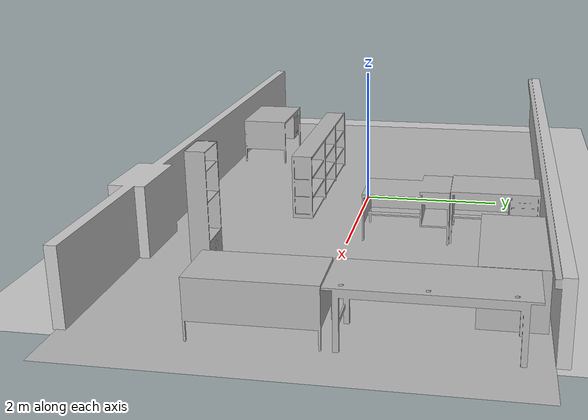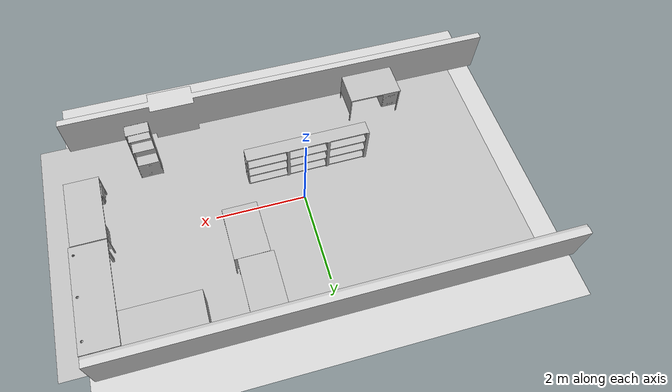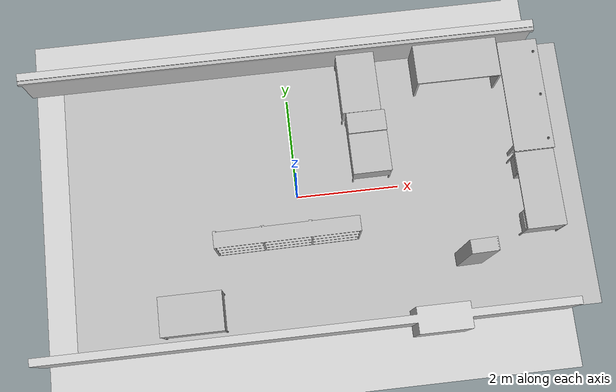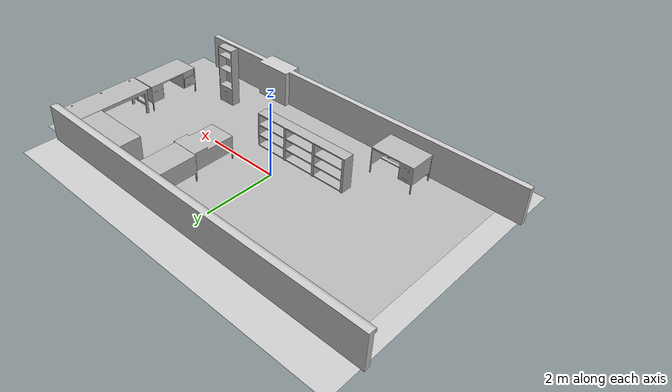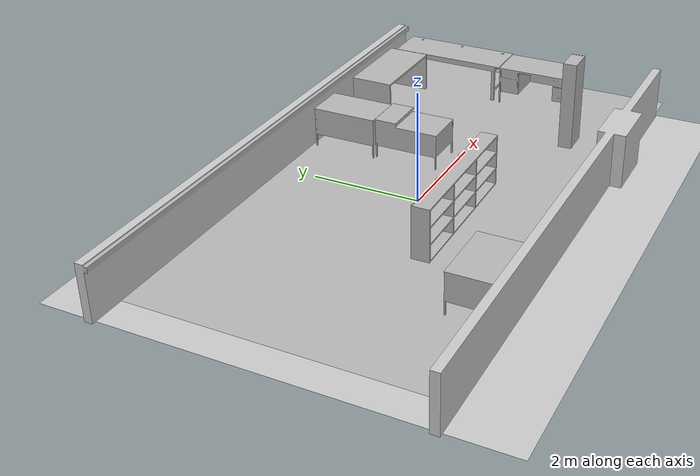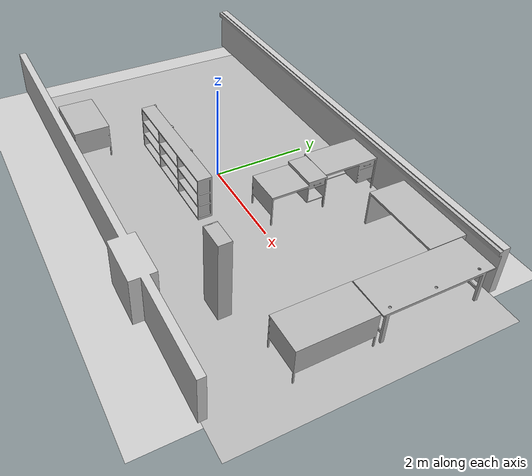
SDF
<sdf version="1.7">
 <world name="default">
  <gravity>0 0 -9.8</gravity>
  <magnetic_field>6e-06 2.3e-05 -4.2e-05</magnetic_field>
  <atmosphere type="adiabatic"/>
  <physics type="ode">
   <max_step_size>0.001</max_step_size>
   <real_time_factor>1</real_time_factor>
   <real_time_update_rate>1000</real_time_update_rate>
  </physics>
  <scene><ambient>0.4 0.4 0.4 1</ambient><background>0.7 0.7 0.7 1</background><shadows>1</shadows></scene>
  <spherical_coordinates>
   <surface_model>EARTH_WGS84</surface_model>
   <latitude_deg>0</latitude_deg>
   <longitude_deg>0</longitude_deg>
   <elevation>0</elevation>
   <heading_deg>0</heading_deg>
  </spherical_coordinates>
  <model name="gplane">
   <link name="body">
    <collision name="gplane_coll">
     <geometry><plane><normal>0 0 1</normal><size>10.075 13.18</size></plane></geometry>
     <surface><contact><ode><kp>1e+06</kp><kd>1</kd></ode></contact></surface>
     <laser_retro>2000</laser_retro>
    </collision>
    <visual name="gplane_vis">
     <geometry><plane><normal>0 0 1</normal><size>10.075 13.18</size></plane></geometry>
     <material>
      <script>
       <uri>model://base_materials/carpet/scripts</uri>
       <uri>model://base_materials/carpet/textures</uri>
       <name>carpet/carpet01</name>
      </script>
     </material>
     <cast_shadows>0</cast_shadows>
    </visual>
    <velocity_decay><linear>0</linear><angular>0</angular></velocity_decay>
   </link>
   <static>1</static>
  </model>
  <model name="Table_01">
   <link name="link_0">
    <inertial>
     <mass>14</mass>
     <inertia>
      <ixx>0.166667</ixx>
      <ixy>0</ixy>
      <ixz>0</ixz>
      <iyy>0.166667</iyy>
      <iyz>0</iyz>
      <izz>0.166667</izz>
     </inertia>
    </inertial>
    <visual name="visual">
     <geometry><mesh><uri>model://BioRoboticsLab/meshes/Table_01.dae</uri><scale>1 1 1</scale></mesh></geometry>
     <material><lighting>1</lighting><shader type="pixel"/></material>
    </visual>
    <collision name="collision">
     <geometry><mesh><uri>model://BioRoboticsLab/meshes/Table_01.dae</uri><scale>1 1 1</scale></mesh></geometry>
     <surface>
      <friction>
       <ode><mu>1</mu><mu2>1</mu2><fdir1>0 0 0</fdir1><slip1>0</slip1><slip2>0</slip2></ode>
       <torsional>
        <coefficient>1</coefficient>
        <patch_radius>0</patch_radius>
        <surface_radius>0</surface_radius>
        <use_patch_radius>1</use_patch_radius>
        <ode><slip>0</slip></ode>
       </torsional>
      </friction>
      <bounce><restitution_coefficient>0</restitution_coefficient><threshold>1e+06</threshold></bounce>
      <contact>
       <collide_without_contact>0</collide_without_contact>
       <collide_without_contact_bitmask>1</collide_without_contact_bitmask>
       <collide_bitmask>1</collide_bitmask>
       <ode>
        <soft_cfm>0</soft_cfm>
        <soft_erp>0.2</soft_erp>
        <kp>1e+13</kp>
        <kd>1</kd>
        <max_vel>0.01</max_vel>
        <min_depth>0</min_depth>
       </ode>
       <bullet>
        <split_impulse>1</split_impulse>
        <split_impulse_penetration_threshold>-0.01</split_impulse_penetration_threshold>
        <soft_cfm>0</soft_cfm>
        <soft_erp>0.2</soft_erp>
        <kp>1e+13</kp>
        <kd>1</kd>
       </bullet>
      </contact>
     </surface>
    </collision>
   </link>
   <static>1</static>
   <pose>4.62119 1.38763 0 0 -0 1.57</pose>
  </model>
  <model name="Table_02">
   <link name="link_0">
    <inertial>
     <mass>15</mass>
     <inertia>
      <ixx>0.166667</ixx>
      <ixy>0</ixy>
      <ixz>0</ixz>
      <iyy>0.166667</iyy>
      <iyz>0</iyz>
      <izz>0.166667</izz>
     </inertia>
    </inertial>
    <visual name="visual">
     <geometry><mesh><uri>model://BioRoboticsLab/meshes/Table_02.dae</uri><scale>1 1 1</scale></mesh></geometry>
     <material><lighting>1</lighting><shader type="pixel"/></material>
    </visual>
    <collision name="collision">
     <geometry><mesh><uri>model://BioRoboticsLab/meshes/Table_02.dae</uri><scale>1 1 1</scale></mesh></geometry>
     <surface>
      <friction>
       <ode><mu>1</mu><mu2>1</mu2><fdir1>0 0 0</fdir1><slip1>0</slip1><slip2>0</slip2></ode>
       <torsional>
        <coefficient>1</coefficient>
        <patch_radius>0</patch_radius>
        <surface_radius>0</surface_radius>
        <use_patch_radius>1</use_patch_radius>
        <ode><slip>0</slip></ode>
       </torsional>
      </friction>
      <bounce><restitution_coefficient>0</restitution_coefficient><threshold>1e+06</threshold></bounce>
      <contact>
       <collide_without_contact>0</collide_without_contact>
       <collide_without_contact_bitmask>1</collide_without_contact_bitmask>
       <collide_bitmask>1</collide_bitmask>
       <ode>
        <soft_cfm>0</soft_cfm>
        <soft_erp>0.2</soft_erp>
        <kp>1e+13</kp>
        <kd>1</kd>
        <max_vel>0.01</max_vel>
        <min_depth>0</min_depth>
       </ode>
       <bullet>
        <split_impulse>1</split_impulse>
        <split_impulse_penetration_threshold>-0.01</split_impulse_penetration_threshold>
        <soft_cfm>0</soft_cfm>
        <soft_erp>0.2</soft_erp>
        <kp>1e+13</kp>
        <kd>1</kd>
       </bullet>
      </contact>
     </surface>
    </collision>
   </link>
   <static>1</static>
   <pose>3.3966 2.2962 0 0 0 -3.14159</pose>
  </model>
  <model name="Shelf_02">
   <link name="link_0">
    <inertial>
     <mass>12</mass>
     <inertia>
      <ixx>0.166667</ixx>
      <ixy>0</ixy>
      <ixz>0</ixz>
      <iyy>0.166667</iyy>
      <iyz>0</iyz>
      <izz>0.166667</izz>
     </inertia>
    </inertial>
    <visual name="visual">
     <geometry><mesh><uri>model://BioRoboticsLab/meshes/Shelf_02.dae</uri><scale>1 1 1</scale></mesh></geometry>
     <material><lighting>1</lighting><shader type="pixel"/></material>
    </visual>
    <collision name="collision">
     <geometry><mesh><uri>model://BioRoboticsLab/meshes/Shelf_02.dae</uri><scale>1 1 1</scale></mesh></geometry>
     <surface>
      <friction>
       <ode><mu>1</mu><mu2>1</mu2><fdir1>0 0 0</fdir1><slip1>0</slip1><slip2>0</slip2></ode>
       <torsional>
        <coefficient>1</coefficient>
        <patch_radius>0</patch_radius>
        <surface_radius>0</surface_radius>
        <use_patch_radius>1</use_patch_radius>
        <ode><slip>0</slip></ode>
       </torsional>
      </friction>
      <bounce><restitution_coefficient>0</restitution_coefficient><threshold>1e+06</threshold></bounce>
      <contact>
       <collide_without_contact>0</collide_without_contact>
       <collide_without_contact_bitmask>1</collide_without_contact_bitmask>
       <collide_bitmask>1</collide_bitmask>
       <ode>
        <soft_cfm>0</soft_cfm>
        <soft_erp>0.2</soft_erp>
        <kp>1e+13</kp>
        <kd>1</kd>
        <max_vel>0.01</max_vel>
        <min_depth>0</min_depth>
       </ode>
       <bullet>
        <split_impulse>1</split_impulse>
        <split_impulse_penetration_threshold>-0.01</split_impulse_penetration_threshold>
        <soft_cfm>0</soft_cfm>
        <soft_erp>0.2</soft_erp>
        <kp>1e+13</kp>
        <kd>1</kd>
       </bullet>
      </contact>
     </surface>
    </collision>
   </link>
   <static>1</static>
   <pose>3.1815 -1.58084 0 0 -0 0.019976</pose>
  </model>
  <model name="Lab_Mesh">
   <link name="link_0">
    <inertial>
     <mass>100000</mass>
     <inertia>
      <ixx>0.166667</ixx>
      <ixy>0</ixy>
      <ixz>0</ixz>
      <iyy>0.166667</iyy>
      <iyz>0</iyz>
      <izz>0.166667</izz>
     </inertia>
    </inertial>
    <visual name="visual">
     <geometry><mesh><uri>model://BioRoboticsLab/meshes/Lab_Mesh.dae</uri><scale>1 1 1</scale></mesh></geometry>
     <material><lighting>1</lighting><shader type="pixel"/></material>
    </visual>
    <collision name="collision">
     <geometry><mesh><uri>model://BioRoboticsLab/meshes/Lab_Mesh.dae</uri><scale>1 1 1</scale></mesh></geometry>
     <surface>
      <friction>
       <ode><mu>1</mu><mu2>1</mu2><fdir1>0 0 0</fdir1><slip1>0</slip1><slip2>0</slip2></ode>
       <torsional>
        <coefficient>1</coefficient>
        <patch_radius>0</patch_radius>
        <surface_radius>0</surface_radius>
        <use_patch_radius>1</use_patch_radius>
        <ode><slip>0</slip></ode>
       </torsional>
      </friction>
      <bounce><restitution_coefficient>0</restitution_coefficient><threshold>1e+06</threshold></bounce>
      <contact>
       <collide_without_contact>0</collide_without_contact>
       <collide_without_contact_bitmask>1</collide_without_contact_bitmask>
       <collide_bitmask>1</collide_bitmask>
       <ode>
        <soft_cfm>0</soft_cfm>
        <soft_erp>0.2</soft_erp>
        <kp>1e+13</kp>
        <kd>1</kd>
        <max_vel>0.01</max_vel>
        <min_depth>0</min_depth>
       </ode>
       <bullet>
        <split_impulse>1</split_impulse>
        <split_impulse_penetration_threshold>-0.01</split_impulse_penetration_threshold>
        <soft_cfm>0</soft_cfm>
        <soft_erp>0.2</soft_erp>
        <kp>1e+13</kp>
        <kd>1</kd>
       </bullet>
      </contact>
     </surface>
    </collision>
   </link>
   <static>1</static>
   <pose>-0.092622 0.025231 0 0 -0 0</pose>
  </model>
  <model name="Lab_Floor">
   <link name="link_0">
    <inertial>
     <mass>1</mass>
     <inertia>
      <ixx>0.166667</ixx>
      <ixy>0</ixy>
      <ixz>0</ixz>
      <iyy>0.166667</iyy>
      <iyz>0</iyz>
      <izz>0.166667</izz>
     </inertia>
    </inertial>
    <visual name="visual">
     <geometry><mesh><uri>model://BioRoboticsLab/meshes/Lab_Floor.dae</uri><scale>1 1 1</scale></mesh></geometry>
     <material><lighting>1</lighting><shader type="pixel"/></material>
    </visual>
   </link>
   <static>1</static>
   <pose>0.580505 -0.03593 0.005 0 -0 0</pose>
  </model>
  <light name="inner_point_white1" type="point">
   <pose>4 5 4 0 -0 0</pose>
   <diffuse>0.2 0.2 0.2 1</diffuse>
   <specular>0.1 0.1 0.1 1</specular>
   <attenuation>
    <range>20</range>
    <linear>0.1</linear>
    <constant>0.2</constant>
    <quadratic>0</quadratic>
   </attenuation>
   <cast_shadows>0</cast_shadows>
   <direction>0 0 -1</direction>
   <spot><inner_angle>0</inner_angle><outer_angle>0</outer_angle><falloff>0</falloff></spot>
  </light>
  <light name="inner_point_white2" type="point">
   <pose>4 10 4 0 -0 0</pose>
   <diffuse>0.2 0.2 0.2 1</diffuse>
   <specular>0.1 0.1 0.1 1</specular>
   <attenuation>
    <range>20</range>
    <linear>0.1</linear>
    <constant>0.2</constant>
    <quadratic>0</quadratic>
   </attenuation>
   <cast_shadows>0</cast_shadows>
   <direction>0 0 -1</direction>
   <spot><inner_angle>0</inner_angle><outer_angle>0</outer_angle><falloff>0</falloff></spot>
  </light>
  <light name="inner_point_white3" type="point">
   <pose>8 5 4 0 -0 0</pose>
   <diffuse>0.2 0.2 0.2 1</diffuse>
   <specular>0.1 0.1 0.1 1</specular>
   <attenuation>
    <range>20</range>
    <linear>0.1</linear>
    <constant>0.2</constant>
    <quadratic>0</quadratic>
   </attenuation>
   <cast_shadows>0</cast_shadows>
   <direction>0 0 -1</direction>
   <spot><inner_angle>0</inner_angle><outer_angle>0</outer_angle><falloff>0</falloff></spot>
  </light>
  <light name="inner_point_white4" type="point">
   <pose>8 10 4 0 -0 0</pose>
   <diffuse>0.2 0.2 0.2 1</diffuse>
   <specular>0.1 0.1 0.1 1</specular>
   <attenuation>
    <range>20</range>
    <linear>0.1</linear>
    <constant>0.2</constant>
    <quadratic>0</quadratic>
   </attenuation>
   <cast_shadows>0</cast_shadows>
   <direction>0 0 -1</direction>
   <spot><inner_angle>0</inner_angle><outer_angle>0</outer_angle><falloff>0</falloff></spot>
  </light>
  <light name="inner_point_white5" type="point">
   <pose>4 5 4 0 -0 0</pose>
   <diffuse>0.2 0.2 0.2 1</diffuse>
   <specular>0.1 0.1 0.1 1</specular>
   <attenuation>
    <range>20</range>
    <linear>0.1</linear>
    <constant>0.2</constant>
    <quadratic>0</quadratic>
   </attenuation>
   <cast_shadows>0</cast_shadows>
   <direction>0 0 -1</direction>
   <spot><inner_angle>0</inner_angle><outer_angle>0</outer_angle><falloff>0</falloff></spot>
  </light>
  <light name="inner_point_white6" type="point">
   <pose>4 10 4 0 -0 0</pose>
   <diffuse>0.2 0.2 0.2 1</diffuse>
   <specular>0.1 0.1 0.1 1</specular>
   <attenuation>
    <range>20</range>
    <linear>0.1</linear>
    <constant>0.2</constant>
    <quadratic>0</quadratic>
   </attenuation>
   <cast_shadows>0</cast_shadows>
   <direction>0 0 -1</direction>
   <spot><inner_angle>0</inner_angle><outer_angle>0</outer_angle><falloff>0</falloff></spot>
  </light>
  <light name="inner_point_white7" type="point">
   <pose>8 5 4 0 -0 0</pose>
   <diffuse>0.2 0.2 0.2 1</diffuse>
   <specular>0.1 0.1 0.1 1</specular>
   <attenuation>
    <range>20</range>
    <linear>0.1</linear>
    <constant>0.2</constant>
    <quadratic>0</quadratic>
   </attenuation>
   <cast_shadows>0</cast_shadows>
   <direction>0 0 -1</direction>
   <spot><inner_angle>0</inner_angle><outer_angle>0</outer_angle><falloff>0</falloff></spot>
  </light>
  <light name="inner_point_white8" type="point">
   <pose>8 10 4 0 -0 0</pose>
   <diffuse>0.2 0.2 0.2 1</diffuse>
   <specular>0.1 0.1 0.1 1</specular>
   <attenuation>
    <range>20</range>
    <linear>0.1</linear>
    <constant>0.2</constant>
    <quadratic>0</quadratic>
   </attenuation>
   <cast_shadows>0</cast_shadows>
   <direction>0 0 -1</direction>
   <spot><inner_angle>0</inner_angle><outer_angle>0</outer_angle><falloff>0</falloff></spot>
  </light>
  <model name="Desk_01">
   <link name="link_0">
    <inertial>
     <mass>35</mass>
     <inertia>
      <ixx>0.166667</ixx>
      <ixy>0</ixy>
      <ixz>0</ixz>
      <iyy>0.166667</iyy>
      <iyz>0</iyz>
      <izz>0.166667</izz>
     </inertia>
    </inertial>
    <visual name="visual">
     <geometry><mesh><uri>model://BioRoboticsLab/meshes/Desk_01.dae</uri><scale>1 1 1</scale></mesh></geometry>
     <material><lighting>1</lighting><shader type="pixel"/></material>
    </visual>
    <collision name="collision">
     <geometry><mesh><uri>model://BioRoboticsLab/meshes/Desk_01.dae</uri><scale>1 1 1</scale></mesh></geometry>
     <surface>
      <friction>
       <ode><mu>1</mu><mu2>1</mu2><fdir1>0 0 0</fdir1><slip1>0</slip1><slip2>0</slip2></ode>
       <torsional>
        <coefficient>1</coefficient>
        <patch_radius>0</patch_radius>
        <surface_radius>0</surface_radius>
        <use_patch_radius>1</use_patch_radius>
        <ode><slip>0</slip></ode>
       </torsional>
      </friction>
      <bounce><restitution_coefficient>0</restitution_coefficient><threshold>1e+06</threshold></bounce>
      <contact>
       <collide_without_contact>0</collide_without_contact>
       <collide_without_contact_bitmask>1</collide_without_contact_bitmask>
       <collide_bitmask>1</collide_bitmask>
       <ode>
        <soft_cfm>0</soft_cfm>
        <soft_erp>0.2</soft_erp>
        <kp>1e+13</kp>
        <kd>1</kd>
        <max_vel>0.01</max_vel>
        <min_depth>0</min_depth>
       </ode>
       <bullet>
        <split_impulse>1</split_impulse>
        <split_impulse_penetration_threshold>-0.01</split_impulse_penetration_threshold>
        <soft_cfm>0</soft_cfm>
        <soft_erp>0.2</soft_erp>
        <kp>1e+13</kp>
        <kd>1</kd>
       </bullet>
      </contact>
     </surface>
    </collision>
   </link>
   <static>1</static>
   <pose>4.60448 -0.497618 0 0 -0 1.57832</pose>
  </model>
  <model name="Desk_02">
   <link name="link_0">
    <inertial>
     <mass>19</mass>
     <inertia>
      <ixx>0.166667</ixx>
      <ixy>0</ixy>
      <ixz>0</ixz>
      <iyy>0.166667</iyy>
      <iyz>0</iyz>
      <izz>0.166667</izz>
     </inertia>
    </inertial>
    <visual name="visual">
     <geometry><mesh><uri>model://BioRoboticsLab/meshes/Desk_02.dae</uri><scale>1 1 1</scale></mesh></geometry>
     <material><lighting>1</lighting><shader type="pixel"/></material>
    </visual>
    <collision name="collision">
     <geometry><mesh><uri>model://BioRoboticsLab/meshes/Desk_02.dae</uri><scale>1 1 1</scale></mesh></geometry>
     <surface>
      <friction>
       <ode><mu>1</mu><mu2>1</mu2><fdir1>0 0 0</fdir1><slip1>0</slip1><slip2>0</slip2></ode>
       <torsional>
        <coefficient>1</coefficient>
        <patch_radius>0</patch_radius>
        <surface_radius>0</surface_radius>
        <use_patch_radius>1</use_patch_radius>
        <ode><slip>0</slip></ode>
       </torsional>
      </friction>
      <bounce><restitution_coefficient>0</restitution_coefficient><threshold>1e+06</threshold></bounce>
      <contact>
       <collide_without_contact>0</collide_without_contact>
       <collide_without_contact_bitmask>1</collide_without_contact_bitmask>
       <collide_bitmask>1</collide_bitmask>
       <ode>
        <soft_cfm>0</soft_cfm>
        <soft_erp>0.2</soft_erp>
        <kp>1e+13</kp>
        <kd>1</kd>
        <max_vel>0.01</max_vel>
        <min_depth>0</min_depth>
       </ode>
       <bullet>
        <split_impulse>1</split_impulse>
        <split_impulse_penetration_threshold>-0.01</split_impulse_penetration_threshold>
        <soft_cfm>0</soft_cfm>
        <soft_erp>0.2</soft_erp>
        <kp>1e+13</kp>
        <kd>1</kd>
       </bullet>
      </contact>
     </surface>
    </collision>
   </link>
   <static>1</static>
   <pose>1.4839 0.938157 0 0 0 -1.56403</pose>
  </model>
  <model name="Desk_03">
   <link name="link_0">
    <inertial>
     <mass>25</mass>
     <inertia>
      <ixx>0.166667</ixx>
      <ixy>0</ixy>
      <ixz>0</ixz>
      <iyy>0.166667</iyy>
      <iyz>0</iyz>
      <izz>0.166667</izz>
     </inertia>
    </inertial>
    <visual name="visual">
     <geometry><mesh><uri>model://BioRoboticsLab/meshes/Desk_03.dae</uri><scale>1 1 1</scale></mesh></geometry>
     <material><lighting>1</lighting><shader type="pixel"/></material>
    </visual>
    <collision name="collision">
     <geometry><mesh><uri>model://BioRoboticsLab/meshes/Desk_03.dae</uri><scale>1 1 1</scale></mesh></geometry>
     <surface>
      <friction>
       <ode><mu>1</mu><mu2>1</mu2><fdir1>0 0 0</fdir1><slip1>0</slip1><slip2>0</slip2></ode>
       <torsional>
        <coefficient>1</coefficient>
        <patch_radius>0</patch_radius>
        <surface_radius>0</surface_radius>
        <use_patch_radius>1</use_patch_radius>
        <ode><slip>0</slip></ode>
       </torsional>
      </friction>
      <bounce><restitution_coefficient>0</restitution_coefficient><threshold>1e+06</threshold></bounce>
      <contact>
       <collide_without_contact>0</collide_without_contact>
       <collide_without_contact_bitmask>1</collide_without_contact_bitmask>
       <collide_bitmask>1</collide_bitmask>
       <ode>
        <soft_cfm>0</soft_cfm>
        <soft_erp>0.2</soft_erp>
        <kp>1e+13</kp>
        <kd>1</kd>
        <max_vel>0.01</max_vel>
        <min_depth>0</min_depth>
       </ode>
       <bullet>
        <split_impulse>1</split_impulse>
        <split_impulse_penetration_threshold>-0.01</split_impulse_penetration_threshold>
        <soft_cfm>0</soft_cfm>
        <soft_erp>0.2</soft_erp>
        <kp>1e+13</kp>
        <kd>1</kd>
       </bullet>
      </contact>
     </surface>
    </collision>
   </link>
   <static>1</static>
   <pose>1.4156 1.99255 0 0 0 -1.56804</pose>
  </model>
  <model name="Desk_04">
   <link name="link_0">
    <inertial>
     <mass>15</mass>
     <inertia>
      <ixx>0.166667</ixx>
      <ixy>0</ixy>
      <ixz>0</ixz>
      <iyy>0.166667</iyy>
      <iyz>0</iyz>
      <izz>0.166667</izz>
     </inertia>
    </inertial>
    <visual name="visual">
     <geometry><mesh><uri>model://BioRoboticsLab/meshes/Desk_04.dae</uri><scale>1 1 1</scale></mesh></geometry>
     <material><lighting>1</lighting><shader type="pixel"/></material>
    </visual>
    <collision name="collision">
     <geometry><mesh><uri>model://BioRoboticsLab/meshes/Desk_04.dae</uri><scale>1 1 1</scale></mesh></geometry>
     <surface>
      <friction>
       <ode><mu>1</mu><mu2>1</mu2><fdir1>0 0 0</fdir1><slip1>0</slip1><slip2>0</slip2></ode>
       <torsional>
        <coefficient>1</coefficient>
        <patch_radius>0</patch_radius>
        <surface_radius>0</surface_radius>
        <use_patch_radius>1</use_patch_radius>
        <ode><slip>0</slip></ode>
       </torsional>
      </friction>
      <bounce><restitution_coefficient>0</restitution_coefficient><threshold>1e+06</threshold></bounce>
      <contact>
       <collide_without_contact>0</collide_without_contact>
       <collide_without_contact_bitmask>1</collide_without_contact_bitmask>
       <collide_bitmask>1</collide_bitmask>
       <ode>
        <soft_cfm>0</soft_cfm>
        <soft_erp>0.2</soft_erp>
        <kp>1e+13</kp>
        <kd>1</kd>
        <max_vel>0.01</max_vel>
        <min_depth>0</min_depth>
       </ode>
       <bullet>
        <split_impulse>1</split_impulse>
        <split_impulse_penetration_threshold>-0.01</split_impulse_penetration_threshold>
        <soft_cfm>0</soft_cfm>
        <soft_erp>0.2</soft_erp>
        <kp>1e+13</kp>
        <kd>1</kd>
       </bullet>
      </contact>
     </surface>
    </collision>
   </link>
   <static>1</static>
   <pose>-2.19478 -2.11643 0 0 -0 0</pose>
  </model>
  <model name="Shelf_01_center">
   <link name="link_0">
    <inertial>
     <mass>30</mass>
     <inertia>
      <ixx>0.166667</ixx>
      <ixy>0</ixy>
      <ixz>0</ixz>
      <iyy>0.166667</iyy>
      <iyz>0</iyz>
      <izz>0.166667</izz>
     </inertia>
    </inertial>
    <visual name="visual">
     <geometry>
      <mesh><uri>model://BioRoboticsLab/meshes/Shelf_1_center.dae</uri><scale>1 1 1</scale></mesh>
     </geometry>
     <material><lighting>1</lighting><shader type="pixel"/></material>
    </visual>
    <collision name="collision">
     <geometry>
      <mesh><uri>model://BioRoboticsLab/meshes/Shelf_1_center.dae</uri><scale>1 1 1</scale></mesh>
     </geometry>
     <surface>
      <friction>
       <ode><mu>1</mu><mu2>1</mu2><fdir1>0 0 0</fdir1><slip1>0</slip1><slip2>0</slip2></ode>
       <torsional>
        <coefficient>1</coefficient>
        <patch_radius>0</patch_radius>
        <surface_radius>0</surface_radius>
        <use_patch_radius>1</use_patch_radius>
        <ode><slip>0</slip></ode>
       </torsional>
      </friction>
      <bounce><restitution_coefficient>0</restitution_coefficient><threshold>1e+06</threshold></bounce>
      <contact>
       <collide_without_contact>0</collide_without_contact>
       <collide_without_contact_bitmask>1</collide_without_contact_bitmask>
       <collide_bitmask>1</collide_bitmask>
       <ode>
        <soft_cfm>0</soft_cfm>
        <soft_erp>0.2</soft_erp>
        <kp>1e+13</kp>
        <kd>1</kd>
        <max_vel>0.01</max_vel>
        <min_depth>0</min_depth>
       </ode>
       <bullet>
        <split_impulse>1</split_impulse>
        <split_impulse_penetration_threshold>-0.01</split_impulse_penetration_threshold>
        <soft_cfm>0</soft_cfm>
        <soft_erp>0.2</soft_erp>
        <kp>1e+13</kp>
        <kd>1</kd>
       </bullet>
      </contact>
     </surface>
    </collision>
   </link>
   <static>1</static>
   <pose>-0.276716 -0.818783 0 0 -0 0.008618</pose>
  </model>
  <light name="user_point_light_0" type="point">
   <pose>-0.825525 0.98897 1 0 -0 0</pose>
   <diffuse>0.5 0.5 0.5 1</diffuse>
   <specular>0.1 0.1 0.1 1</specular>
   <attenuation>
    <range>20</range>
    <constant>0.5</constant>
    <linear>0.01</linear>
    <quadratic>0.001</quadratic>
   </attenuation>
   <cast_shadows>0</cast_shadows>
   <direction>0 0 -1</direction>
  </light>
 </world>
</sdf>
